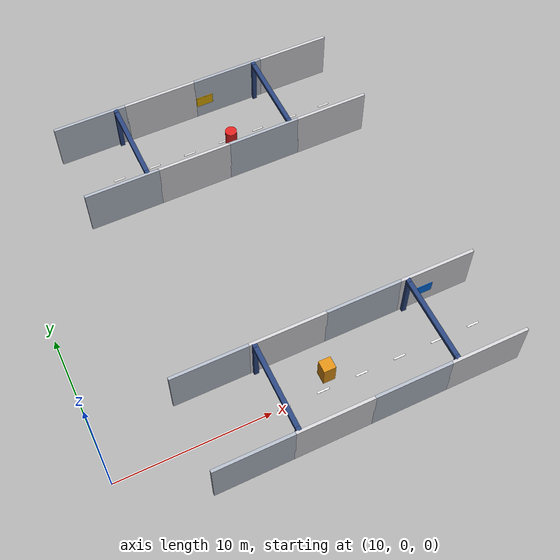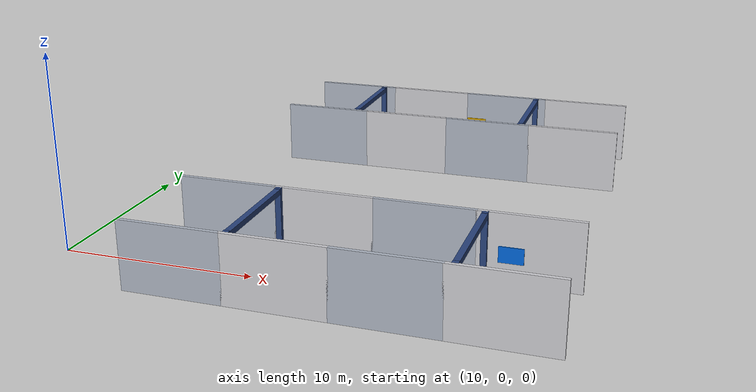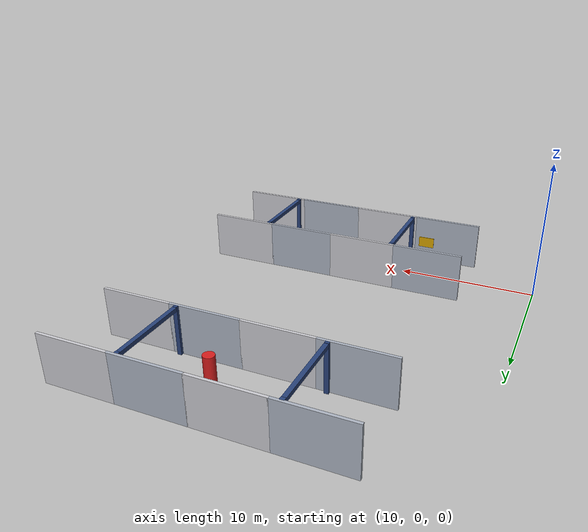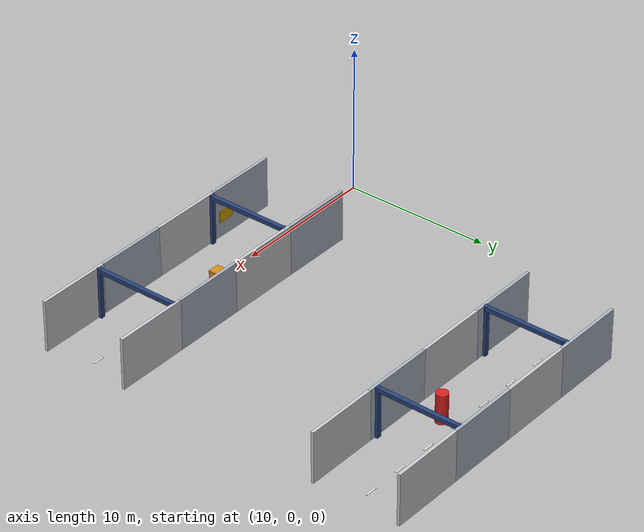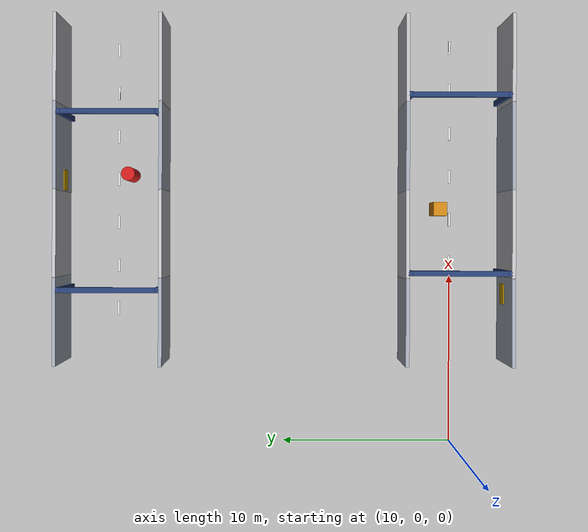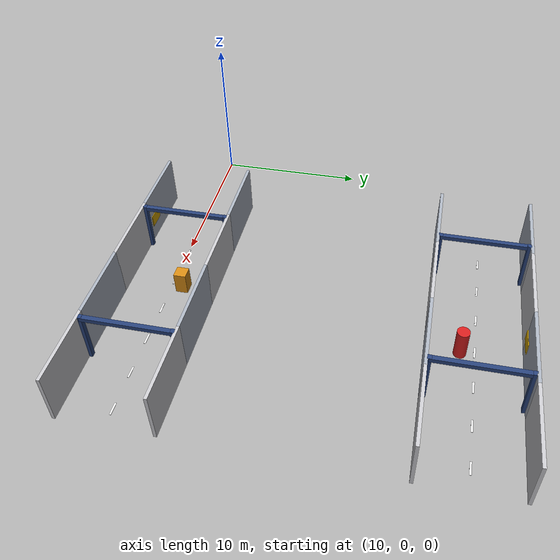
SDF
<sdf version="1.10">
 <world name="tunnel_circuit">
  <model name="tw_Ao_3">
   <static>true</static>
   <pose>17.500 -3.000 1.750 0 0 0.0000</pose>
   <link name="link">
    <collision name="col"><geometry><box><size>5.060 0.200 3.500</size></box></geometry></collision>
    <visual name="vis">
     <geometry><box><size>5.060 0.200 3.500</size></box></geometry>
     <material>
      <ambient>0.42 0.44 0.48 1</ambient>
      <diffuse>0.68 0.71 0.76 1</diffuse>
      <specular>0.1 0.1 0.1 1</specular>
      <pbr>
       <metal><albedo_map>detail.png</albedo_map><roughness>0.9</roughness><metalness>0.0</metalness></metal>
      </pbr>
     </material>
    </visual>
   </link>
  </model>
  <model name="tw_Ao_4">
   <static>true</static>
   <pose>22.500 -3.000 1.750 0 0 0.0000</pose>
   <link name="link">
    <collision name="col"><geometry><box><size>5.060 0.200 3.500</size></box></geometry></collision>
    <visual name="vis">
     <geometry><box><size>5.060 0.200 3.500</size></box></geometry>
     <material>
      <ambient>0.50 0.50 0.52 1</ambient>
      <diffuse>0.80 0.80 0.82 1</diffuse>
      <specular>0.1 0.1 0.1 1</specular>
      <pbr>
       <metal><albedo_map>detail.png</albedo_map><roughness>0.92</roughness><metalness>0.0</metalness></metal>
      </pbr>
     </material>
    </visual>
   </link>
  </model>
  <model name="tw_Ao_5">
   <static>true</static>
   <pose>27.500 -3.000 1.750 0 0 0.0000</pose>
   <link name="link">
    <collision name="col"><geometry><box><size>5.060 0.200 3.500</size></box></geometry></collision>
    <visual name="vis">
     <geometry><box><size>5.060 0.200 3.500</size></box></geometry>
     <material>
      <ambient>0.42 0.44 0.48 1</ambient>
      <diffuse>0.68 0.71 0.76 1</diffuse>
      <specular>0.1 0.1 0.1 1</specular>
      <pbr>
       <metal><albedo_map>detail.png</albedo_map><roughness>0.9</roughness><metalness>0.0</metalness></metal>
      </pbr>
     </material>
    </visual>
   </link>
  </model>
  <model name="tw_Ao_6">
   <static>true</static>
   <pose>32.500 -3.000 1.750 0 0 0.0000</pose>
   <link name="link">
    <collision name="col"><geometry><box><size>5.060 0.200 3.500</size></box></geometry></collision>
    <visual name="vis">
     <geometry><box><size>5.060 0.200 3.500</size></box></geometry>
     <material>
      <ambient>0.50 0.50 0.52 1</ambient>
      <diffuse>0.80 0.80 0.82 1</diffuse>
      <specular>0.1 0.1 0.1 1</specular>
      <pbr>
       <metal><albedo_map>detail.png</albedo_map><roughness>0.92</roughness><metalness>0.0</metalness></metal>
      </pbr>
     </material>
    </visual>
   </link>
  </model>
  <model name="tw_Ai_3">
   <static>true</static>
   <pose>17.500 3.000 1.750 0 0 0.0000</pose>
   <link name="link">
    <collision name="col"><geometry><box><size>5.060 0.200 3.500</size></box></geometry></collision>
    <visual name="vis">
     <geometry><box><size>5.060 0.200 3.500</size></box></geometry>
     <material>
      <ambient>0.42 0.44 0.48 1</ambient>
      <diffuse>0.68 0.71 0.76 1</diffuse>
      <specular>0.1 0.1 0.1 1</specular>
      <pbr>
       <metal><albedo_map>detail.png</albedo_map><roughness>0.9</roughness><metalness>0.0</metalness></metal>
      </pbr>
     </material>
    </visual>
   </link>
  </model>
  <model name="tw_Ai_4">
   <static>true</static>
   <pose>22.500 3.000 1.750 0 0 0.0000</pose>
   <link name="link">
    <collision name="col"><geometry><box><size>5.060 0.200 3.500</size></box></geometry></collision>
    <visual name="vis">
     <geometry><box><size>5.060 0.200 3.500</size></box></geometry>
     <material>
      <ambient>0.50 0.50 0.52 1</ambient>
      <diffuse>0.80 0.80 0.82 1</diffuse>
      <specular>0.1 0.1 0.1 1</specular>
      <pbr>
       <metal><albedo_map>detail.png</albedo_map><roughness>0.92</roughness><metalness>0.0</metalness></metal>
      </pbr>
     </material>
    </visual>
   </link>
  </model>
  <model name="tw_Ai_5">
   <static>true</static>
   <pose>27.500 3.000 1.750 0 0 0.0000</pose>
   <link name="link">
    <collision name="col"><geometry><box><size>5.060 0.200 3.500</size></box></geometry></collision>
    <visual name="vis">
     <geometry><box><size>5.060 0.200 3.500</size></box></geometry>
     <material>
      <ambient>0.42 0.44 0.48 1</ambient>
      <diffuse>0.68 0.71 0.76 1</diffuse>
      <specular>0.1 0.1 0.1 1</specular>
      <pbr>
       <metal><albedo_map>detail.png</albedo_map><roughness>0.9</roughness><metalness>0.0</metalness></metal>
      </pbr>
     </material>
    </visual>
   </link>
  </model>
  <model name="tw_Ai_6">
   <static>true</static>
   <pose>32.500 3.000 1.750 0 0 0.0000</pose>
   <link name="link">
    <collision name="col"><geometry><box><size>5.060 0.200 3.500</size></box></geometry></collision>
    <visual name="vis">
     <geometry><box><size>5.060 0.200 3.500</size></box></geometry>
     <material>
      <ambient>0.50 0.50 0.52 1</ambient>
      <diffuse>0.80 0.80 0.82 1</diffuse>
      <specular>0.1 0.1 0.1 1</specular>
      <pbr>
       <metal><albedo_map>detail.png</albedo_map><roughness>0.92</roughness><metalness>0.0</metalness></metal>
      </pbr>
     </material>
    </visual>
   </link>
  </model>
  <model name="tw_Bo_3">
   <static>true</static>
   <pose>17.500 23.000 1.750 0 0 0.0000</pose>
   <link name="link">
    <collision name="col"><geometry><box><size>5.060 0.200 3.500</size></box></geometry></collision>
    <visual name="vis">
     <geometry><box><size>5.060 0.200 3.500</size></box></geometry>
     <material>
      <ambient>0.42 0.44 0.48 1</ambient>
      <diffuse>0.68 0.71 0.76 1</diffuse>
      <specular>0.1 0.1 0.1 1</specular>
      <pbr>
       <metal><albedo_map>detail.png</albedo_map><roughness>0.9</roughness><metalness>0.0</metalness></metal>
      </pbr>
     </material>
    </visual>
   </link>
  </model>
  <model name="tw_Bo_4">
   <static>true</static>
   <pose>22.500 23.000 1.750 0 0 0.0000</pose>
   <link name="link">
    <collision name="col"><geometry><box><size>5.060 0.200 3.500</size></box></geometry></collision>
    <visual name="vis">
     <geometry><box><size>5.060 0.200 3.500</size></box></geometry>
     <material>
      <ambient>0.50 0.50 0.52 1</ambient>
      <diffuse>0.80 0.80 0.82 1</diffuse>
      <specular>0.1 0.1 0.1 1</specular>
      <pbr>
       <metal><albedo_map>detail.png</albedo_map><roughness>0.92</roughness><metalness>0.0</metalness></metal>
      </pbr>
     </material>
    </visual>
   </link>
  </model>
  <model name="tw_Bo_5">
   <static>true</static>
   <pose>27.500 23.000 1.750 0 0 0.0000</pose>
   <link name="link">
    <collision name="col"><geometry><box><size>5.060 0.200 3.500</size></box></geometry></collision>
    <visual name="vis">
     <geometry><box><size>5.060 0.200 3.500</size></box></geometry>
     <material>
      <ambient>0.42 0.44 0.48 1</ambient>
      <diffuse>0.68 0.71 0.76 1</diffuse>
      <specular>0.1 0.1 0.1 1</specular>
      <pbr>
       <metal><albedo_map>detail.png</albedo_map><roughness>0.9</roughness><metalness>0.0</metalness></metal>
      </pbr>
     </material>
    </visual>
   </link>
  </model>
  <model name="tw_Bo_6">
   <static>true</static>
   <pose>32.500 23.000 1.750 0 0 0.0000</pose>
   <link name="link">
    <collision name="col"><geometry><box><size>5.060 0.200 3.500</size></box></geometry></collision>
    <visual name="vis">
     <geometry><box><size>5.060 0.200 3.500</size></box></geometry>
     <material>
      <ambient>0.50 0.50 0.52 1</ambient>
      <diffuse>0.80 0.80 0.82 1</diffuse>
      <specular>0.1 0.1 0.1 1</specular>
      <pbr>
       <metal><albedo_map>detail.png</albedo_map><roughness>0.92</roughness><metalness>0.0</metalness></metal>
      </pbr>
     </material>
    </visual>
   </link>
  </model>
  <model name="tw_Bi_3">
   <static>true</static>
   <pose>17.500 17.000 1.750 0 0 0.0000</pose>
   <link name="link">
    <collision name="col"><geometry><box><size>5.060 0.200 3.500</size></box></geometry></collision>
    <visual name="vis">
     <geometry><box><size>5.060 0.200 3.500</size></box></geometry>
     <material>
      <ambient>0.42 0.44 0.48 1</ambient>
      <diffuse>0.68 0.71 0.76 1</diffuse>
      <specular>0.1 0.1 0.1 1</specular>
      <pbr>
       <metal><albedo_map>detail.png</albedo_map><roughness>0.9</roughness><metalness>0.0</metalness></metal>
      </pbr>
     </material>
    </visual>
   </link>
  </model>
  <model name="tw_Bi_4">
   <static>true</static>
   <pose>22.500 17.000 1.750 0 0 0.0000</pose>
   <link name="link">
    <collision name="col"><geometry><box><size>5.060 0.200 3.500</size></box></geometry></collision>
    <visual name="vis">
     <geometry><box><size>5.060 0.200 3.500</size></box></geometry>
     <material>
      <ambient>0.50 0.50 0.52 1</ambient>
      <diffuse>0.80 0.80 0.82 1</diffuse>
      <specular>0.1 0.1 0.1 1</specular>
      <pbr>
       <metal><albedo_map>detail.png</albedo_map><roughness>0.92</roughness><metalness>0.0</metalness></metal>
      </pbr>
     </material>
    </visual>
   </link>
  </model>
  <model name="tw_Bi_5">
   <static>true</static>
   <pose>27.500 17.000 1.750 0 0 0.0000</pose>
   <link name="link">
    <collision name="col"><geometry><box><size>5.060 0.200 3.500</size></box></geometry></collision>
    <visual name="vis">
     <geometry><box><size>5.060 0.200 3.500</size></box></geometry>
     <material>
      <ambient>0.42 0.44 0.48 1</ambient>
      <diffuse>0.68 0.71 0.76 1</diffuse>
      <specular>0.1 0.1 0.1 1</specular>
      <pbr>
       <metal><albedo_map>detail.png</albedo_map><roughness>0.9</roughness><metalness>0.0</metalness></metal>
      </pbr>
     </material>
    </visual>
   </link>
  </model>
  <model name="tw_Bi_6">
   <static>true</static>
   <pose>32.500 17.000 1.750 0 0 0.0000</pose>
   <link name="link">
    <collision name="col"><geometry><box><size>5.060 0.200 3.500</size></box></geometry></collision>
    <visual name="vis">
     <geometry><box><size>5.060 0.200 3.500</size></box></geometry>
     <material>
      <ambient>0.50 0.50 0.52 1</ambient>
      <diffuse>0.80 0.80 0.82 1</diffuse>
      <specular>0.1 0.1 0.1 1</specular>
      <pbr>
       <metal><albedo_map>detail.png</albedo_map><roughness>0.92</roughness><metalness>0.0</metalness></metal>
      </pbr>
     </material>
    </visual>
   </link>
  </model>
  <model name="rib2_p">
   <static>true</static>
   <pose>20.283 2.820 1.750 0 0 0.0000</pose>
   <link name="link">
    <collision name="col"><geometry><box><size>0.300 0.250 3.500</size></box></geometry></collision>
    <visual name="vis">
     <geometry><box><size>0.300 0.250 3.500</size></box></geometry>
     <material>
      <ambient>0.10 0.16 0.30 1</ambient>
      <diffuse>0.16 0.26 0.48 1</diffuse>
      <specular>0.3 0.3 0.35 1</specular>
     </material>
    </visual>
   </link>
  </model>
  <model name="rib2_m">
   <static>true</static>
   <pose>20.283 -2.820 1.750 0 0 0.0000</pose>
   <link name="link">
    <collision name="col"><geometry><box><size>0.300 0.250 3.500</size></box></geometry></collision>
    <visual name="vis">
     <geometry><box><size>0.300 0.250 3.500</size></box></geometry>
     <material>
      <ambient>0.10 0.16 0.30 1</ambient>
      <diffuse>0.16 0.26 0.48 1</diffuse>
      <specular>0.3 0.3 0.35 1</specular>
     </material>
    </visual>
   </link>
  </model>
  <model name="rib2_c">
   <static>true</static>
   <pose>20.283 0.000 3.340 0 0 0.0000</pose>
   <link name="link">
    <collision name="col"><geometry><box><size>0.300 5.700 0.280</size></box></geometry></collision>
    <visual name="vis">
     <geometry><box><size>0.300 5.700 0.280</size></box></geometry>
     <material>
      <ambient>0.10 0.16 0.30 1</ambient>
      <diffuse>0.16 0.26 0.48 1</diffuse>
      <specular>0.3 0.3 0.35 1</specular>
     </material>
    </visual>
   </link>
  </model>
  <model name="rib3_p">
   <static>true</static>
   <pose>30.425 2.820 1.750 0 0 0.0000</pose>
   <link name="link">
    <collision name="col"><geometry><box><size>0.300 0.250 3.500</size></box></geometry></collision>
    <visual name="vis">
     <geometry><box><size>0.300 0.250 3.500</size></box></geometry>
     <material>
      <ambient>0.10 0.16 0.30 1</ambient>
      <diffuse>0.16 0.26 0.48 1</diffuse>
      <specular>0.3 0.3 0.35 1</specular>
     </material>
    </visual>
   </link>
  </model>
  <model name="rib3_m">
   <static>true</static>
   <pose>30.425 -2.820 1.750 0 0 0.0000</pose>
   <link name="link">
    <collision name="col"><geometry><box><size>0.300 0.250 3.500</size></box></geometry></collision>
    <visual name="vis">
     <geometry><box><size>0.300 0.250 3.500</size></box></geometry>
     <material>
      <ambient>0.10 0.16 0.30 1</ambient>
      <diffuse>0.16 0.26 0.48 1</diffuse>
      <specular>0.3 0.3 0.35 1</specular>
     </material>
    </visual>
   </link>
  </model>
  <model name="rib3_c">
   <static>true</static>
   <pose>30.425 0.000 3.340 0 0 0.0000</pose>
   <link name="link">
    <collision name="col"><geometry><box><size>0.300 5.700 0.280</size></box></geometry></collision>
    <visual name="vis">
     <geometry><box><size>0.300 5.700 0.280</size></box></geometry>
     <material>
      <ambient>0.10 0.16 0.30 1</ambient>
      <diffuse>0.16 0.26 0.48 1</diffuse>
      <specular>0.3 0.3 0.35 1</specular>
     </material>
    </visual>
   </link>
  </model>
  <model name="rib14_p">
   <static>true</static>
   <pose>29.434 17.180 1.750 0 0 3.1416</pose>
   <link name="link">
    <collision name="col"><geometry><box><size>0.300 0.250 3.500</size></box></geometry></collision>
    <visual name="vis">
     <geometry><box><size>0.300 0.250 3.500</size></box></geometry>
     <material>
      <ambient>0.10 0.16 0.30 1</ambient>
      <diffuse>0.16 0.26 0.48 1</diffuse>
      <specular>0.3 0.3 0.35 1</specular>
     </material>
    </visual>
   </link>
  </model>
  <model name="rib14_m">
   <static>true</static>
   <pose>29.434 22.820 1.750 0 0 3.1416</pose>
   <link name="link">
    <collision name="col"><geometry><box><size>0.300 0.250 3.500</size></box></geometry></collision>
    <visual name="vis">
     <geometry><box><size>0.300 0.250 3.500</size></box></geometry>
     <material>
      <ambient>0.10 0.16 0.30 1</ambient>
      <diffuse>0.16 0.26 0.48 1</diffuse>
      <specular>0.3 0.3 0.35 1</specular>
     </material>
    </visual>
   </link>
  </model>
  <model name="rib14_c">
   <static>true</static>
   <pose>29.434 20.000 3.340 0 0 3.1416</pose>
   <link name="link">
    <collision name="col"><geometry><box><size>0.300 5.700 0.280</size></box></geometry></collision>
    <visual name="vis">
     <geometry><box><size>0.300 5.700 0.280</size></box></geometry>
     <material>
      <ambient>0.10 0.16 0.30 1</ambient>
      <diffuse>0.16 0.26 0.48 1</diffuse>
      <specular>0.3 0.3 0.35 1</specular>
     </material>
    </visual>
   </link>
  </model>
  <model name="rib15_p">
   <static>true</static>
   <pose>19.292 17.180 1.750 0 0 3.1416</pose>
   <link name="link">
    <collision name="col"><geometry><box><size>0.300 0.250 3.500</size></box></geometry></collision>
    <visual name="vis">
     <geometry><box><size>0.300 0.250 3.500</size></box></geometry>
     <material>
      <ambient>0.10 0.16 0.30 1</ambient>
      <diffuse>0.16 0.26 0.48 1</diffuse>
      <specular>0.3 0.3 0.35 1</specular>
     </material>
    </visual>
   </link>
  </model>
  <model name="rib15_m">
   <static>true</static>
   <pose>19.292 22.820 1.750 0 0 3.1416</pose>
   <link name="link">
    <collision name="col"><geometry><box><size>0.300 0.250 3.500</size></box></geometry></collision>
    <visual name="vis">
     <geometry><box><size>0.300 0.250 3.500</size></box></geometry>
     <material>
      <ambient>0.10 0.16 0.30 1</ambient>
      <diffuse>0.16 0.26 0.48 1</diffuse>
      <specular>0.3 0.3 0.35 1</specular>
     </material>
    </visual>
   </link>
  </model>
  <model name="rib15_c">
   <static>true</static>
   <pose>19.292 20.000 3.340 0 0 3.1416</pose>
   <link name="link">
    <collision name="col"><geometry><box><size>0.300 5.700 0.280</size></box></geometry></collision>
    <visual name="vis">
     <geometry><box><size>0.300 5.700 0.280</size></box></geometry>
     <material>
      <ambient>0.10 0.16 0.30 1</ambient>
      <diffuse>0.16 0.26 0.48 1</diffuse>
      <specular>0.3 0.3 0.35 1</specular>
     </material>
    </visual>
   </link>
  </model>
  <model name="sign1">
   <static>true</static>
   <pose>19.015 -2.840 1.500 0 0 0.0000</pose>
   <link name="link">
    <visual name="vis">
     <geometry><box><size>1.200 0.050 0.800</size></box></geometry>
     <material>
      <ambient>0.6 0.45 0.0 1</ambient>
      <diffuse>0.85 0.65 0.0 1</diffuse>
      <specular>0.1 0.1 0.1 1</specular>
     </material>
    </visual>
   </link>
  </model>
  <model name="sign2">
   <static>true</static>
   <pose>31.692 2.840 1.500 0 0 0.0000</pose>
   <link name="link">
    <visual name="vis">
     <geometry><box><size>1.200 0.050 0.800</size></box></geometry>
     <material>
      <ambient>0.0 0.3 0.6 1</ambient>
      <diffuse>0.0 0.4 0.85 1</diffuse>
      <specular>0.1 0.1 0.1 1</specular>
     </material>
    </visual>
   </link>
  </model>
  <model name="sign11">
   <static>true</static>
   <pose>25.631 22.840 1.500 0 0 3.1416</pose>
   <link name="link">
    <visual name="vis">
     <geometry><box><size>1.200 0.050 0.800</size></box></geometry>
     <material>
      <ambient>0.6 0.45 0.0 1</ambient>
      <diffuse>0.85 0.65 0.0 1</diffuse>
      <specular>0.1 0.1 0.1 1</specular>
     </material>
    </visual>
   </link>
  </model>
  <model name="dash7">
   <static>true</static>
   <pose>18.203 0.000 0.012 0 0 0.0000</pose>
   <link name="link">
    <visual name="vis">
     <geometry><box><size>0.800 0.120 0.020</size></box></geometry>
     <material>
      <ambient>0.7 0.7 0.7 1</ambient>
      <diffuse>0.92 0.92 0.92 1</diffuse>
      <specular>0.1 0.1 0.1 1</specular>
     </material>
    </visual>
   </link>
  </model>
  <model name="dash8">
   <static>true</static>
   <pose>20.803 0.000 0.012 0 0 0.0000</pose>
   <link name="link">
    <visual name="vis">
     <geometry><box><size>0.800 0.120 0.020</size></box></geometry>
     <material>
      <ambient>0.7 0.7 0.7 1</ambient>
      <diffuse>0.92 0.92 0.92 1</diffuse>
      <specular>0.1 0.1 0.1 1</specular>
     </material>
    </visual>
   </link>
  </model>
  <model name="dash9">
   <static>true</static>
   <pose>23.404 0.000 0.012 0 0 0.0000</pose>
   <link name="link">
    <visual name="vis">
     <geometry><box><size>0.800 0.120 0.020</size></box></geometry>
     <material>
      <ambient>0.7 0.7 0.7 1</ambient>
      <diffuse>0.92 0.92 0.92 1</diffuse>
      <specular>0.1 0.1 0.1 1</specular>
     </material>
    </visual>
   </link>
  </model>
  <model name="dash10">
   <static>true</static>
   <pose>26.004 0.000 0.012 0 0 0.0000</pose>
   <link name="link">
    <visual name="vis">
     <geometry><box><size>0.800 0.120 0.020</size></box></geometry>
     <material>
      <ambient>0.7 0.7 0.7 1</ambient>
      <diffuse>0.92 0.92 0.92 1</diffuse>
      <specular>0.1 0.1 0.1 1</specular>
     </material>
    </visual>
   </link>
  </model>
  <model name="dash11">
   <static>true</static>
   <pose>28.604 0.000 0.012 0 0 0.0000</pose>
   <link name="link">
    <visual name="vis">
     <geometry><box><size>0.800 0.120 0.020</size></box></geometry>
     <material>
      <ambient>0.7 0.7 0.7 1</ambient>
      <diffuse>0.92 0.92 0.92 1</diffuse>
      <specular>0.1 0.1 0.1 1</specular>
     </material>
    </visual>
   </link>
  </model>
  <model name="dash12">
   <static>true</static>
   <pose>31.205 0.000 0.012 0 0 0.0000</pose>
   <link name="link">
    <visual name="vis">
     <geometry><box><size>0.800 0.120 0.020</size></box></geometry>
     <material>
      <ambient>0.7 0.7 0.7 1</ambient>
      <diffuse>0.92 0.92 0.92 1</diffuse>
      <specular>0.1 0.1 0.1 1</specular>
     </material>
    </visual>
   </link>
  </model>
  <model name="dash13">
   <static>true</static>
   <pose>33.805 0.000 0.012 0 0 0.0000</pose>
   <link name="link">
    <visual name="vis">
     <geometry><box><size>0.800 0.120 0.020</size></box></geometry>
     <material>
      <ambient>0.7 0.7 0.7 1</ambient>
      <diffuse>0.92 0.92 0.92 1</diffuse>
      <specular>0.1 0.1 0.1 1</specular>
     </material>
    </visual>
   </link>
  </model>
  <model name="dash53">
   <static>true</static>
   <pose>33.594 20.000 0.012 0 0 3.1416</pose>
   <link name="link">
    <visual name="vis">
     <geometry><box><size>0.800 0.120 0.020</size></box></geometry>
     <material>
      <ambient>0.7 0.7 0.7 1</ambient>
      <diffuse>0.92 0.92 0.92 1</diffuse>
      <specular>0.1 0.1 0.1 1</specular>
     </material>
    </visual>
   </link>
  </model>
  <model name="dash54">
   <static>true</static>
   <pose>30.994 20.000 0.012 0 0 3.1416</pose>
   <link name="link">
    <visual name="vis">
     <geometry><box><size>0.800 0.120 0.020</size></box></geometry>
     <material>
      <ambient>0.7 0.7 0.7 1</ambient>
      <diffuse>0.92 0.92 0.92 1</diffuse>
      <specular>0.1 0.1 0.1 1</specular>
     </material>
    </visual>
   </link>
  </model>
  <model name="dash55">
   <static>true</static>
   <pose>28.393 20.000 0.012 0 0 3.1416</pose>
   <link name="link">
    <visual name="vis">
     <geometry><box><size>0.800 0.120 0.020</size></box></geometry>
     <material>
      <ambient>0.7 0.7 0.7 1</ambient>
      <diffuse>0.92 0.92 0.92 1</diffuse>
      <specular>0.1 0.1 0.1 1</specular>
     </material>
    </visual>
   </link>
  </model>
  <model name="dash56">
   <static>true</static>
   <pose>25.793 20.000 0.012 0 0 3.1416</pose>
   <link name="link">
    <visual name="vis">
     <geometry><box><size>0.800 0.120 0.020</size></box></geometry>
     <material>
      <ambient>0.7 0.7 0.7 1</ambient>
      <diffuse>0.92 0.92 0.92 1</diffuse>
      <specular>0.1 0.1 0.1 1</specular>
     </material>
    </visual>
   </link>
  </model>
  <model name="dash57">
   <static>true</static>
   <pose>23.193 20.000 0.012 0 0 3.1416</pose>
   <link name="link">
    <visual name="vis">
     <geometry><box><size>0.800 0.120 0.020</size></box></geometry>
     <material>
      <ambient>0.7 0.7 0.7 1</ambient>
      <diffuse>0.92 0.92 0.92 1</diffuse>
      <specular>0.1 0.1 0.1 1</specular>
     </material>
    </visual>
   </link>
  </model>
  <model name="dash58">
   <static>true</static>
   <pose>20.592 20.000 0.012 0 0 3.1416</pose>
   <link name="link">
    <visual name="vis">
     <geometry><box><size>0.800 0.120 0.020</size></box></geometry>
     <material>
      <ambient>0.7 0.7 0.7 1</ambient>
      <diffuse>0.92 0.92 0.92 1</diffuse>
      <specular>0.1 0.1 0.1 1</specular>
     </material>
    </visual>
   </link>
  </model>
  <model name="dash59">
   <static>true</static>
   <pose>17.992 20.000 0.012 0 0 3.1416</pose>
   <link name="link">
    <visual name="vis">
     <geometry><box><size>0.800 0.120 0.020</size></box></geometry>
     <material>
      <ambient>0.7 0.7 0.7 1</ambient>
      <diffuse>0.92 0.92 0.92 1</diffuse>
      <specular>0.1 0.1 0.1 1</specular>
     </material>
    </visual>
   </link>
  </model>
  <model name="obs_A1">
   <static>true</static>
   <pose>24.000 0.800 0.750 0 0 0.0000</pose>
   <link name="link">
    <collision name="col"><geometry><box><size>0.800 0.800 1.500</size></box></geometry></collision>
    <visual name="vis">
     <geometry><box><size>0.800 0.800 1.500</size></box></geometry>
     <material>
      <ambient>0.45 0.30 0.05 1</ambient>
      <diffuse>0.85 0.55 0.08 1</diffuse>
      <specular>0.1 0.1 0.1 1</specular>
     </material>
    </visual>
   </link>
  </model>
  <model name="obs_B2">
   <static>true</static>
   <pose>26.000 19.100 1.000 0 0 0</pose>
   <link name="link">
    <collision name="col">
     <geometry><cylinder><radius>0.4</radius><length>2.0</length></cylinder></geometry>
    </collision>
    <visual name="vis">
     <geometry><cylinder><radius>0.4</radius><length>2.000</length></cylinder></geometry>
     <material>
      <ambient>0.45 0.07 0.07 1</ambient>
      <diffuse>0.85 0.12 0.12 1</diffuse>
      <specular>0.3 0.3 0.3 1</specular>
     </material>
    </visual>
   </link>
  </model>
 </world>
</sdf>
